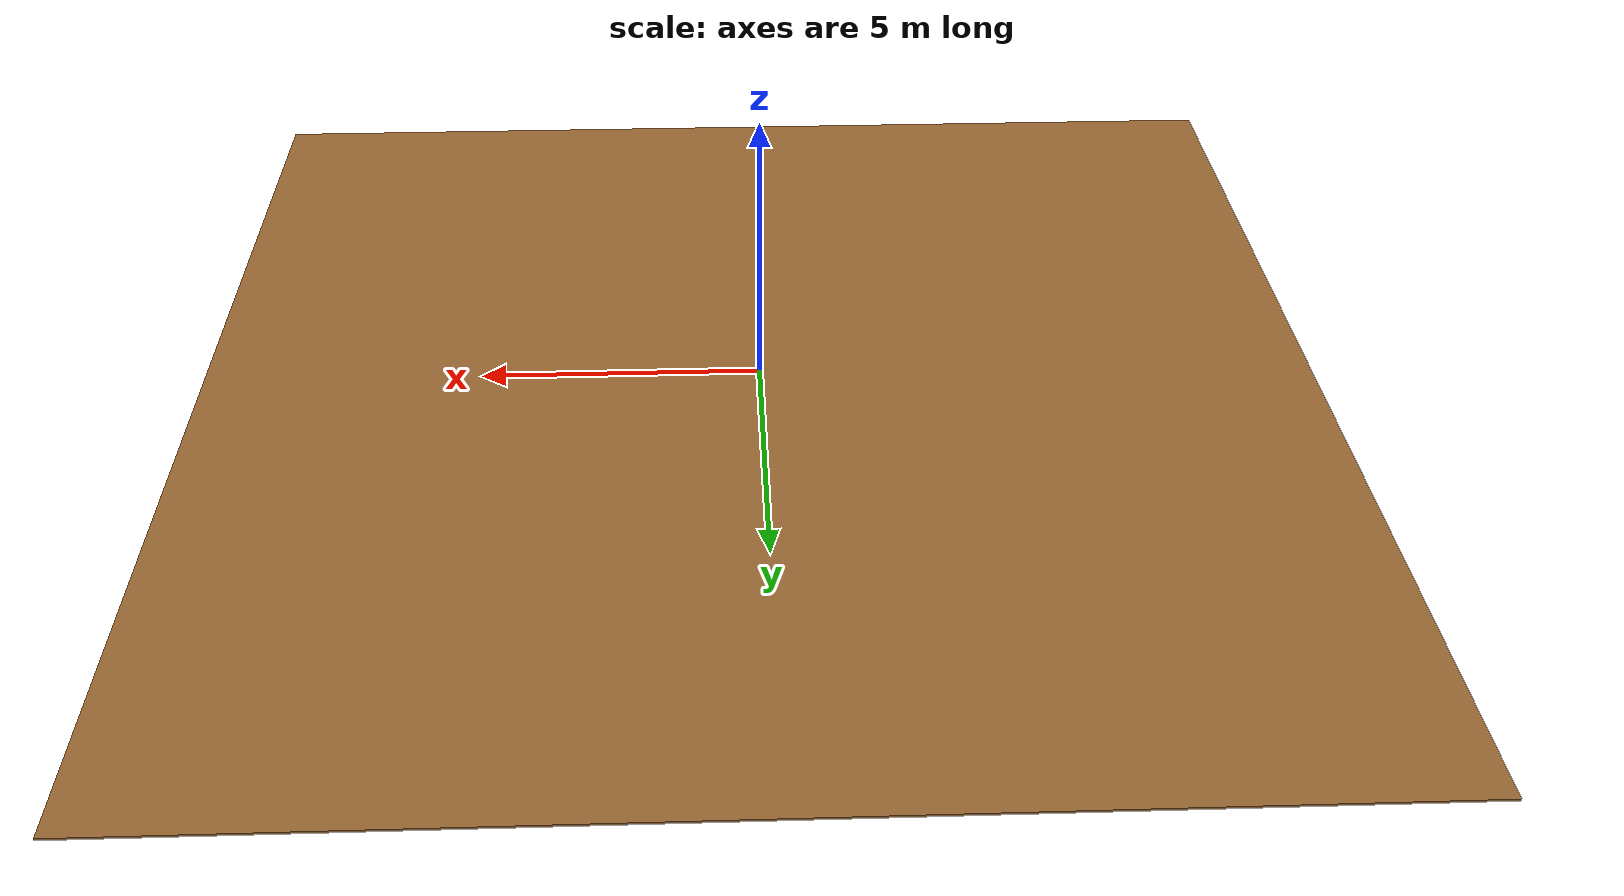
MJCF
<mujoco model="ramp">

    <worldbody>
      <body name = "ramp" pos = "0.0 0.5 0.">
        <geom name="ramp" type="box"
        size="10 10 0.02"
        pos="0 0 0"
        rgba="0.6 0.4 0.2 1"
        euler="0.3 0.0 0"
        friction="1.5 0.3 0.03"
        />
    </body>
    </worldbody>
  </mujoco>
